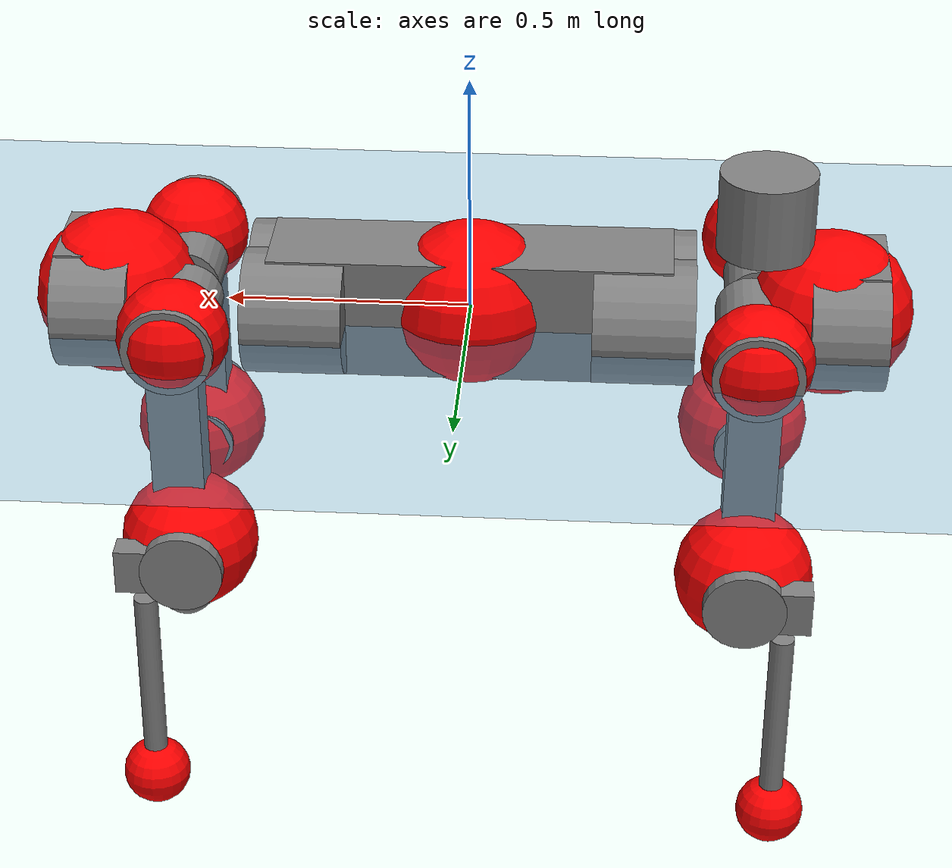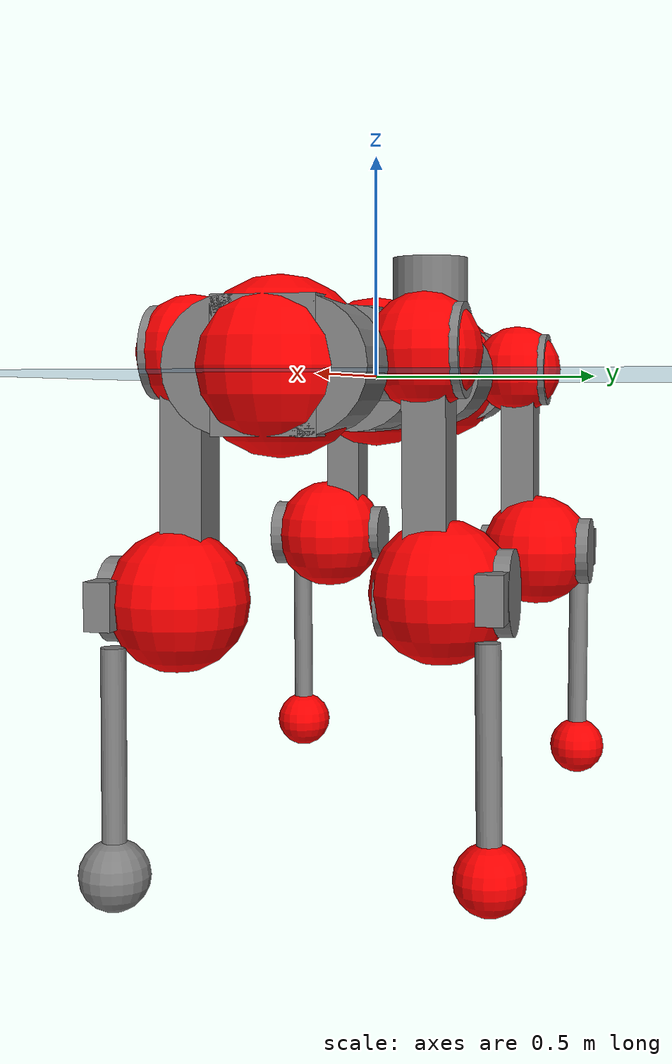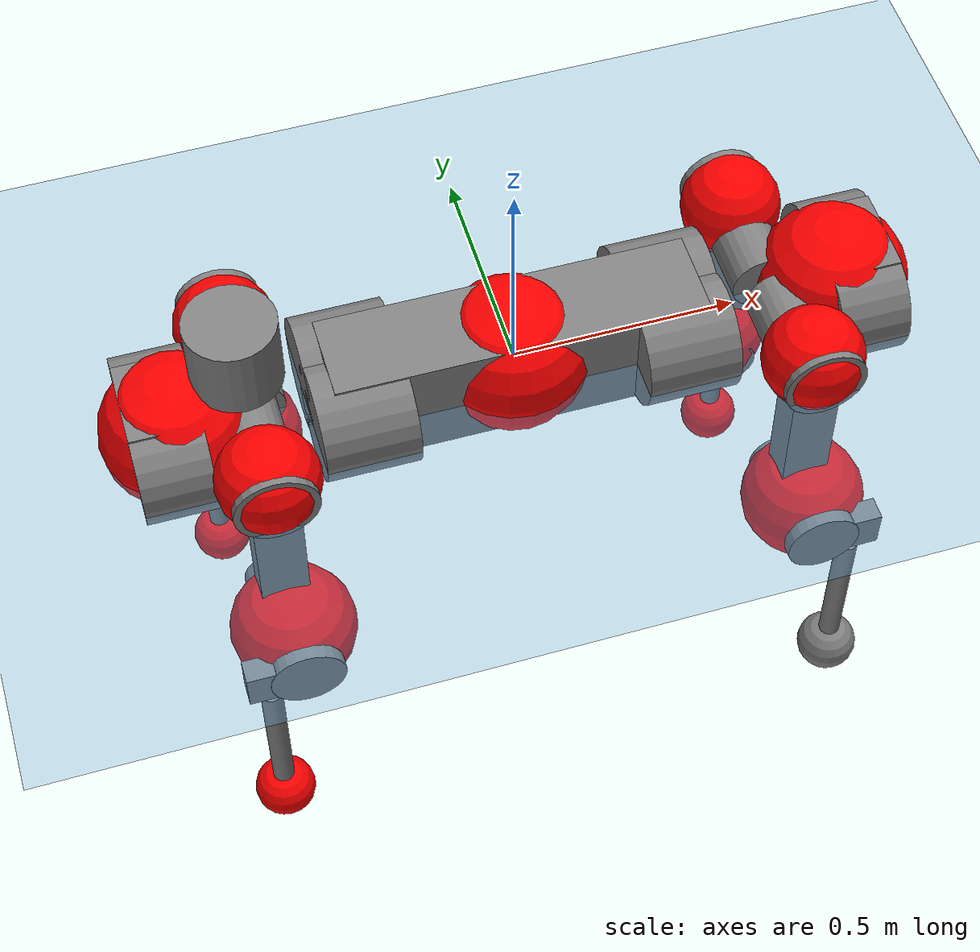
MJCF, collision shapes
<mujoco model="anymal_c">
  <compiler angle="radian" assetdir="assets" balanceinertia="true" inertiafromgeom="false"/>

  <option timestep="0.005" density="1.2" viscosity="2e-05"/>

  <size nkey="1"/>

  <visual>
    <quality shadowsize="8192"/>
    <map shadowclip="0.5"/>
  </visual>

  <default>
    <default class="/">
      <material specular="0" shininess="0.25"/>
      <geom contype="0" conaffinity="0" group="1" solref="-1000 -80"/>
      <site size="0.01 0.005 0.005" group="5"/>
      <general forcelimited="true" forcerange="-80 80" biastype="affine" gainprm="80" biasprm="0 -80 -2"/>
      <default class="anymal_c">
        <joint armature="0.01" damping="0.01" frictionloss="0.1"/>
        <default class="visual">
          <geom type="mesh" group="2"/>
          <default class="visual_zflip"/>
        </default>
        <default class="collision">
          <geom type="cylinder" group="3"/>
          <default class="foot">
            <geom size="0.03 0 0" type="sphere" condim="6" priority="1" friction="0.8 0.02 0.01" solimp="0.015 1 0.03"/>
          </default>
        </default>
      </default>
      <default class="reward_collision_sphere">
        <geom group="5" rgba="1 0 0 1"/>
      </default>
    </default>
  </default>

  <asset>
    <texture type="skybox" colorspace="auto" name="//unnamed_texture_0" builtin="gradient" rgb1="0.95 0.95 0.95" rgb2="0.95 0.95 0.95" width="100" height="600"/>
    <texture type="2d" colorspace="auto" name="texplane" builtin="checker" rgb1="0.345 0.575 0.748" rgb2="0.345 0.575 0.748" markrgb="1 1 1" width="512" height="512"/>
    <texture type="2d" colorspace="linear" name="base" file="base.png"/>
    <texture type="2d" colorspace="linear" name="top_shell" file="top_shell.png"/>
    <texture type="2d" colorspace="linear" name="bottom_shell" file="bottom_shell.png"/>
    <texture type="2d" colorspace="linear" name="remote" file="remote.png"/>
    <texture type="2d" colorspace="linear" name="hatch" file="hatch.png"/>
    <texture type="2d" colorspace="linear" name="handle" file="handle.png"/>
    <texture type="2d" colorspace="linear" name="face" file="face.png"/>
    <texture type="2d" colorspace="linear" name="battery" file="battery.png"/>
    <texture type="2d" colorspace="linear" name="lidar_cage" file="lidar_cage.png"/>
    <texture type="2d" colorspace="linear" name="depth_camera" file="depth_camera.png"/>
    <texture type="2d" colorspace="linear" name="wide_angle_camera" file="wide_angle_camera.png"/>
    <texture type="2d" colorspace="linear" name="lidar" file="lidar.png"/>
    <texture type="2d" colorspace="linear" name="drive" file="drive.png"/>
    <texture type="2d" colorspace="linear" name="hip_l" file="hip_l.png"/>
    <texture type="2d" colorspace="linear" name="shank_l" file="shank_l.png"/>
    <texture type="2d" colorspace="linear" name="foot" file="foot.png"/>
    <texture type="2d" colorspace="linear" name="thigh" file="thigh.png"/>
    <texture type="2d" colorspace="linear" name="shank_r" file="shank_r.png"/>
    <texture type="2d" colorspace="linear" name="hip_r" file="hip_r.png"/>
    <material name="MatPlane" class="/" texture="texplane" texuniform="true" texrepeat="2 2" specular="0.9" shininess="0.5"/>
    <material name="black_plastic" class="/" rgba="0.007 0.007 0.007 1"/>
    <material name="green" class="/" rgba="0.052 0.178 0.033 1"/>
    <material name="red" class="/" rgba="0.178 0.006 0.005 1"/>
    <material name="yellow" class="/" rgba="0.178 0.119 0.006 1"/>
    <material name="lwl" class="/" rgba="0.8 0.8 0.8 1"/>
    <material name="base" class="/" texture="base"/>
    <material name="top_shell" class="/" texture="top_shell"/>
    <material name="bottom_shell" class="/" texture="bottom_shell"/>
    <material name="hip_l" class="/" texture="hip_l"/>
    <material name="thigh" class="/" texture="thigh"/>
    <material name="shank_l" class="/" texture="shank_l"/>
    <material name="foot" class="/" texture="foot"/>
    <material name="hip_r" class="/" texture="hip_r"/>
    <material name="shank" class="/" texture="shank_r"/>
    <material name="hatch" class="/" texture="hatch"/>
    <material name="remote" class="/" texture="remote"/>
    <material name="handle" class="/" texture="handle"/>
    <material name="face" class="/" texture="face"/>
    <material name="depth_camera" class="/" texture="depth_camera"/>
    <material name="wide_angle_camera" class="/" texture="wide_angle_camera"/>
    <material name="battery" class="/" texture="battery"/>
    <material name="lidar_cage" class="/" texture="lidar_cage"/>
    <material name="lidar" class="/" texture="lidar"/>
    <material name="drive" class="/" texture="drive"/>
    <mesh name="base_0" class="/" file="base_0.obj"/>
    <mesh name="base_1" class="/" file="base_1.obj"/>
    <mesh name="base_2" class="/" file="base_2.obj"/>
    <mesh name="base_3" class="/" file="base_3.obj"/>
    <mesh name="base_4" class="/" file="base_4.obj"/>
    <mesh name="base_5" class="/" file="base_5.obj"/>
    <mesh name="top_shell" class="/" file="top_shell.obj"/>
    <mesh name="bottom_shell" class="/" file="bottom_shell.obj"/>
    <mesh name="remote" class="/" file="remote.obj"/>
    <mesh name="handle" class="/" file="handle.obj"/>
    <mesh name="face" class="/" file="face.obj"/>
    <mesh name="wide_angle_camera" class="/" file="wide_angle_camera.obj"/>
    <mesh name="depth_camera" class="/" file="depth_camera.obj"/>
    <mesh name="battery" class="/" file="battery.obj"/>
    <mesh name="lidar_cage" class="/" file="lidar_cage.obj"/>
    <mesh name="lidar" class="/" file="lidar.obj"/>
    <mesh name="drive" class="/" file="drive.obj"/>
    <mesh name="hip_l" class="/" file="hip_l.obj"/>
    <mesh name="thigh" class="/" file="thigh.obj"/>
    <mesh name="shank_l" class="/" file="shank_l.obj"/>
    <mesh name="foot" class="/" file="foot.obj"/>
    <mesh name="hip_r" class="/" file="hip_r.obj"/>
    <mesh name="hatch" class="/" file="hatch.obj"/>
    <mesh name="shank_r" class="/" file="shank_r.obj"/>
  </asset>

  <worldbody>
    <geom name="floor" class="/" size="100 100 0.125" type="plane" group="0" material="MatPlane"/>
    <light name="toplight_shadow" class="/" pos="0 0 5" dir="0.0990148 0.0990148 -0.990148" type="directional" ambient="0.04 0.04 0.04" diffuse="0.55 0.55 0.55" specular="0.12 0.12 0.12"/>
    <light name="toplight_fill" class="/" pos="0 0 5" dir="0.0990148 0.0990148 -0.990148" type="directional" castshadow="false" ambient="0.04 0.04 0.04" diffuse="0.3 0.3 0.3" specular="0.08 0.08 0.08"/>
    <body name="trunk" childclass="anymal_c" pos="-0.00345919 8.86079e-05 0.0119444" quat="0.999998 -0.000388888 0.00118239 -0.00149264">
      <inertial pos="0.0171326 0.0147082 0.075774" quat="0.506628 0.475471 0.526333 0.490132" mass="53.6933" diaginertia="5.29596 0.364907 2.48957"/>
      <joint name="//unnamed_joint_0" type="free" armature="0" damping="0" frictionloss="0"/>
      <geom name="//unnamed_geom_1" class="visual" material="green" mesh="base_0"/>
      <geom name="//unnamed_geom_2" class="visual" material="yellow" mesh="base_1"/>
      <geom name="//unnamed_geom_3" class="visual" material="red" mesh="base_2"/>
      <geom name="//unnamed_geom_4" class="visual" material="black_plastic" mesh="base_3"/>
      <geom name="//unnamed_geom_5" class="visual" material="lwl" mesh="base_4"/>
      <geom name="//unnamed_geom_6" class="visual" material="base" mesh="base_5"/>
      <geom name="trunk_1" class="collision" size="0.410765 0.0991503 0.127479" type="box"/>
      <geom name="trunk_2" class="collision" size="0.127479 0.102691" pos="0.354348 0.0656679 0" quat="0.707107 0 0.707107 0"/>
      <geom name="trunk_3" class="collision" size="0.127479 0.102691" pos="-0.354348 0.0656679 0" quat="0.707107 0 0.707107 0"/>
      <geom name="trunk_4" class="collision" size="0.127479 0.102691" pos="0.354348 -0.0656679 0" quat="0.707107 0 0.707107 0"/>
      <geom name="trunk_5" class="collision" size="0.127479 0.102691" pos="-0.354348 -0.0656679 0" quat="0.707107 0 0.707107 0"/>
      <geom name="//unnamed_geom_12" class="visual" material="top_shell" mesh="top_shell"/>
      <geom name="//unnamed_geom_13" class="visual" material="bottom_shell" mesh="bottom_shell"/>
      <geom name="//unnamed_geom_14" class="visual" material="remote" mesh="remote"/>
      <geom name="//unnamed_geom_15" class="visual" material="handle" mesh="handle"/>
      <geom name="//unnamed_geom_16" class="visual" pos="0.675297 0 0" quat="1 0 0 0" material="face" mesh="face"/>
      <geom name="trunk_6" class="collision" size="0.0779038 0.0991503 0.127479" pos="0.764902 0 0" type="box"/>
      <geom name="//unnamed_geom_18" class="collision" size="0.127479 0.0779038" pos="0.764902 0.0656679 0" quat="0.707107 0 0.707107 0"/>
      <geom name="//unnamed_geom_19" class="collision" size="0.127479 0.0779038" pos="0.764902 -0.0656679 0" quat="0.707107 0 0.707107 0"/>
      <geom name="//unnamed_geom_20" class="visual" pos="0.752115 0 -0.0495159" quat="0.965926 0 0.258819 0" material="depth_camera" mesh="depth_camera"/>
      <geom name="//unnamed_geom_21" class="visual" pos="0.835771 0 0.0251796" material="wide_angle_camera" mesh="wide_angle_camera"/>
      <geom name="//unnamed_geom_22" class="visual_zflip" pos="-0.675297 0 0" quat="0 0 0 1" material="face" mesh="face"/>
      <geom name="trunk_7" class="collision" size="0.0779038 0.0991503 0.127479" pos="-0.764902 0 0" quat="0 0 0 1" type="box"/>
      <geom name="//unnamed_geom_24" class="collision" size="0.127479 0.0779038" pos="-0.764902 -0.0656679 0" quat="0 -0.707107 0 0.707107"/>
      <geom name="//unnamed_geom_25" class="collision" size="0.127479 0.0779038" pos="-0.764902 0.0656679 0" quat="0 -0.707107 0 0.707107"/>
      <geom name="//unnamed_geom_26" class="visual" pos="-0.752115 0 -0.0495159" quat="0 -0.258819 0 0.965926" material="depth_camera" mesh="depth_camera"/>
      <geom name="//unnamed_geom_27" class="visual_zflip" pos="-0.835771 0 0.0251796" quat="0 0 0 1" material="wide_angle_camera" mesh="wide_angle_camera"/>
      <geom name="//unnamed_geom_28" class="visual" material="battery" mesh="battery"/>
      <geom name="//unnamed_geom_29" class="visual" pos="0 0.062662 0.0484607" quat="0.683013 -0.183013 0.183013 0.683013" material="depth_camera" mesh="depth_camera"/>
      <geom name="//unnamed_geom_30" class="visual" pos="0 -0.062662 0.0484607" quat="0.683013 0.183013 0.183013 -0.683013" material="depth_camera" mesh="depth_camera"/>
      <geom name="//unnamed_geom_31" class="visual" pos="-0.593023 0 0.123627" quat="1 0 0 0" material="lidar_cage" mesh="lidar_cage"/>
      <geom name="trunk_8" class="collision" size="0.0991503 0.084986" pos="-0.593023 0 0.224547"/>
      <geom name="//unnamed_geom_33" class="visual" pos="-0.593023 -0.000271503 0.239181" quat="0.707107 0 0 -0.707107" material="lidar" mesh="lidar"/>
      <geom name="//unnamed_geom_34" class="visual" pos="0.488592 0.097828 -1.28322e-08" quat="0.258819 0.965926 0 0" material="drive" mesh="drive"/>
      <geom name="//unnamed_geom_35" class="visual" pos="0.488592 -0.097828 1.28322e-08" quat="0.258819 -0.965926 0 0" material="drive" mesh="drive"/>
      <geom name="//unnamed_geom_36" class="visual" pos="-0.488592 0.097828 1.28322e-08" quat="0 0 0.965926 -0.258819" material="drive" mesh="drive"/>
      <geom name="//unnamed_geom_37" class="visual" pos="-0.488592 -0.097828 -1.28322e-08" quat="0 0 -0.965926 -0.258819" material="drive" mesh="drive"/>
      <geom name="//unnamed_geom_38" class="visual" pos="0.188985 0 0.122786" quat="1 0 0 0" material="hatch" mesh="hatch"/>
      <geom name="//unnamed_geom_39" class="reward_collision_sphere" size="0.169972"/>
      <geom name="//unnamed_geom_40" class="reward_collision_sphere" size="0.169972" pos="0.733133 0 0"/>
      <geom name="//unnamed_geom_41" class="reward_collision_sphere" size="0.169972" pos="-0.733133 0 0"/>
      <site name="imu" pos="0.489364 0.0298146 0.00475898" size="0.0141643"/>
      <camera name="track" pos="0 -1.87623 0" quat="0.707107 0.707107 0 0" mode="trackcom"/>
      <camera name="ego_camera" pos="0.733133 0 -0.0672801" quat="-0.5 -0.5 0.5 0.5"/>
      <body name="LF_HIP" pos="0.484241 0.10549 0.00181923" quat="0.255585 0.966781 0.00322919 0.0006031">
        <inertial pos="0.0774575 -0.00483442 -0.0110733" quat="-0.16308 0.730113 -0.147747 0.646925" mass="9.67209" diaginertia="0.0826257 0.00373687 0.0414271"/>
        <joint name="LF_HAA" pos="0 0 0" axis="0.997985 -0.0488435 -0.0405074" stiffness="0.0340244" range="-0.659341 0.285499" armature="0.00285306" damping="0.0826752" frictionloss="0.177976"/>
        <geom name="//unnamed_geom_42" class="visual" pos="0 -0.000754858 0.000123985" quat="0.258819 -0.965926 0 0" material="hip_l" mesh="hip_l"/>
        <geom name="//unnamed_geom_43" class="visual" pos="0.0975881 -0.109414 -0.0686725" quat="0.183013 -0.683013 0.683013 0.183013" material="drive" mesh="drive"/>
        <geom name="//unnamed_geom_44" class="collision" size="0.0708216 0.0991503" pos="0.0975881 -0.0112196 -0.0116142" quat="-0.353553 -0.612372 0.612372 -0.353553"/>
        <body name="LF_THIGH" pos="0.0968785 -0.0648871 -0.0706195" quat="0.183457 -0.683762 0.681942 0.18376">
          <inertial pos="0.0416995 -0.000568968 -0.428406" quat="0.994064 0.00223894 -0.050766 0.0961971" mass="7.26024" diaginertia="0.397884 0.0209959 0.0576746"/>
          <joint name="LF_HFE" pos="0 0 0" axis="0.996597 0.0792485 0.0226943" range="-3.01568 3.03567" armature="0.0109445" damping="0.0409551" frictionloss="0.245157"/>
          <geom name="//unnamed_geom_45" class="visual" pos="0.0137496 2.16662e-05 0" quat="0.707107 0 0 -0.707107" material="thigh" mesh="thigh"/>
          <geom name="//unnamed_geom_46" class="collision" size="0.0920681 0.0566573" pos="0.0651674 0 0" quat="0.5 0.5 -0.5 -0.5"/>
          <geom name="//unnamed_geom_47" class="collision" size="0.0531162 0.042493 0.200162" pos="0.0488755 0 -0.23769" quat="0.707107 0 0 -0.707107" type="box"/>
          <geom name="//unnamed_geom_48" class="visual" pos="0.163407 0 -0.47937" quat="1 0 0 0" material="drive" mesh="drive"/>
          <geom name="//unnamed_geom_49" class="collision" size="0.0708216 0.0991503" pos="0.0493643 0 -0.47937" quat="0.707107 0 0.707107 0"/>
          <geom name="//unnamed_geom_50" class="reward_collision_sphere" size="0.113315" pos="0.0407296 0 0"/>
          <body name="LF_SHANK" pos="0.149923 0.0138783 -0.46258" quat="0.999977 -0.00386998 -0.00199763 0.00513495">
            <inertial pos="0.0149074 -0.0580676 -0.129479" quat="0.989644 -0.135938 0.0150585 -0.043583" mass="1.93858" diaginertia="0.132449 0.00667706 0.0181775"/>
            <joint name="LF_KFE" pos="0 0 0" axis="0.999182 0.0048078 0.0401411" stiffness="0.009399" range="-2.90969 2.97698" armature="0.0077532" damping="0.0745868" frictionloss="0.0627549"/>
            <geom name="//unnamed_geom_51" class="visual" pos="0.00448344 0.023906 0" quat="0.707107 0 0 -0.707107" material="shank_l" mesh="shank_l"/>
            <geom name="LF_kfe_act" class="collision" size="0.084986 0.0283287" pos="0.0325837 0 0" quat="0.5 0.5 -0.5 -0.5"/>
            <geom name="//unnamed_geom_53" class="collision" size="0.0814435 0.0478046 0.0269122" pos="0.0325837 -0.0539405 0" quat="0.5 0.5 -0.5 -0.5" type="box"/>
            <geom name="//unnamed_geom_54" class="visual" pos="0.0212598 -0.0748031 -0.568466" quat="0.382683 0 0 -0.92388" material="foot" mesh="foot"/>
            <geom name="LF_calf" class="collision" size="0.0247876 0.200074" pos="0.0212609 -0.082507 -0.284233" quat="0.707107 0 0 -0.707107"/>
            <geom name="LF_foot" class="foot" size="0.0509334" pos="0.0212609 -0.082507 -0.530621" quat="0.707107 0 0 -0.707107"/>
            <geom name="//unnamed_geom_57" class="reward_collision_sphere" size="0.141643" pos="-0.0814592 0 0"/>
            <geom name="//unnamed_geom_58" class="reward_collision_sphere" size="0.0708216" pos="0.0212609 -0.082507 -0.530621"/>
            <site name="LF_foot" class="foot" pos="0.0212609 -0.082507 -0.530621" quat="0.707107 0 0 -0.707107" size="0.0141643"/>
          </body>
        </body>
      </body>
      <body name="RF_HIP" pos="0.499922 -0.101435 0.00339601" quat="0.258384 -0.966042 -0.000546873 -9.11891e-05">
        <inertial pos="0.0780027 0.0181513 -0.0171562" quat="0.128936 0.67855 0.130894 0.711205" mass="7.34221" diaginertia="0.0643844 0.00268289 0.0383342"/>
        <joint name="RF_HAA" pos="0 0 0" axis="0.99923 0.0183725 0.0346582" stiffness="0.0364994" range="-0.188754 0.624969" armature="0.0238095" damping="0.0143228" frictionloss="0.246085"/>
        <geom name="//unnamed_geom_59" class="visual" pos="0 0.000754852 0.000123984" quat="0.258819 0.965926 0 0" material="hip_r" mesh="hip_r"/>
        <geom name="//unnamed_geom_60" class="visual" pos="0.0975881 0.109414 -0.0686725" quat="0.183013 0.683013 0.683013 -0.183013" material="drive" mesh="drive"/>
        <geom name="//unnamed_geom_61" class="collision" size="0.0708216 0.0991503" pos="0.0975881 0.0112196 -0.0116142" quat="-0.353553 0.612372 0.612372 0.353553"/>
        <body name="RF_THIGH" pos="0.106422 0.0525781 -0.0609055" quat="0.182088 0.683429 0.682232 -0.18528">
          <inertial pos="0.049621 -0.00454484 -0.409887" quat="0.993109 -0.0712404 -0.0605217 0.0706908" mass="12.1207" diaginertia="0.385237 0.0216915 0.0579167"/>
          <joint name="RF_HFE" pos="0 0 0" axis="0.997869 0.0564574 0.0327171" stiffness="0.0158124" range="-3.47217 2.90942" armature="0.0130612" damping="0.0782115" frictionloss="0.0154159"/>
          <geom name="//unnamed_geom_62" class="visual" pos="0.0137496 2.16662e-05 0" quat="0.707107 0 0 -0.707107" material="thigh" mesh="thigh"/>
          <geom name="//unnamed_geom_63" class="collision" size="0.0920681 0.0566573" pos="0.0651674 0 0" quat="0.5 0.5 0.5 0.5"/>
          <geom name="//unnamed_geom_64" class="collision" size="0.0531162 0.042493 0.200162" pos="0.0488755 0 -0.23769" quat="0.707107 0 0 0.707107" type="box"/>
          <geom name="//unnamed_geom_65" class="visual" pos="0.163407 0 -0.47937" quat="1 0 0 0" material="drive" mesh="drive"/>
          <geom name="//unnamed_geom_66" class="collision" size="0.0708216 0.0991503" pos="0.0493643 0 -0.47937" quat="0.707107 0 0.707107 0"/>
          <geom name="//unnamed_geom_67" class="reward_collision_sphere" size="0.113315" pos="0.0407296 0 0"/>
          <body name="RF_SHANK" pos="0.148801 0.0155944 -0.487713" quat="0.999999 -0.000609649 0.00100738 -0.00106373">
            <inertial pos="0.00966324 0.0601599 -0.151137" quat="0.988907 0.147498 -0.00748135 -0.0158171" mass="1.76564" diaginertia="0.14045 0.00781929 0.0145281"/>
            <joint name="RF_KFE" pos="0 0 0" axis="0.999893 -0.0142106 0.00353073" range="-2.92702 2.91617" armature="0.019292" damping="0" frictionloss="0.256208"/>
            <geom name="//unnamed_geom_68" class="visual" pos="0.00448342 -0.0239059 0" quat="0.707107 0 0 0.707107" material="shank" mesh="shank_r"/>
            <geom name="RF_kfe_act" class="collision" size="0.084986 0.0283287" pos="0.0325837 0 0" quat="0.5 0.5 0.5 0.5"/>
            <geom name="//unnamed_geom_70" class="collision" size="0.0814435 0.0478046 0.0269122" pos="0.0325837 0.0539405 0" quat="0.5 0.5 0.5 0.5" type="box"/>
            <geom name="//unnamed_geom_71" class="visual" pos="0.0212619 0.0748031 -0.568466" quat="0.382683 0 0 0.92388" material="foot" mesh="foot"/>
            <geom name="RF_calf" class="collision" size="0.0247876 0.200074" pos="0.0212609 0.082507 -0.284233" quat="0.707107 0 0 0.707107"/>
            <geom name="RF_foot" class="foot" size="0.0710798" pos="0.0212609 0.082507 -0.530621" quat="0.707107 0 0 0.707107"/>
            <geom name="//unnamed_geom_74" class="reward_collision_sphere" size="0.141643" pos="-0.0814592 0 0"/>
            <geom name="//unnamed_geom_75" class="reward_collision_sphere" size="0.0708216" pos="0.0212609 0.082507 -0.530621"/>
            <site name="RF_foot" class="foot" pos="0.0212609 0.082507 -0.530621" quat="0.707107 0 0 0.707107" size="0.0141643"/>
          </body>
        </body>
      </body>
      <body name="LH_HIP" pos="-0.472065 0.0888449 -0.000532777" quat="0.00272274 0.00153162 0.966245 -0.257604">
        <inertial pos="0.0834799 -0.000778421 -0.0166382" quat="0.139409 0.680508 0.0741119 0.715529" mass="7.82322" diaginertia="0.086593 0.00334682 0.0616155"/>
        <joint name="LH_HAA" pos="0 0 0" axis="0.999259 -0.0366708 0.0117133" stiffness="0.0379513" range="-0.649472 1.07634" armature="0.0254724" damping="0.0663061" frictionloss="0.158528"/>
        <geom name="//unnamed_geom_76" class="visual" pos="0 0.000754852 0.000123984" quat="-0.258819 -0.965926 0 0" material="hip_r" mesh="hip_r"/>
        <geom name="//unnamed_geom_77" class="visual" pos="0.0975881 0.109414 -0.0686725" quat="0.183013 0.683013 0.683013 -0.183013" material="drive" mesh="drive"/>
        <geom name="//unnamed_geom_78" class="collision" size="0.0708216 0.0991503" pos="0.0975881 0.0112196 -0.0116142" quat="-0.353553 0.612372 0.612372 0.353553"/>
        <body name="LH_THIGH" pos="0.10885 0.0855944 -0.0642515" quat="0.183011 0.683009 0.683018 -0.183007">
          <inertial pos="0.0511355 -0.013465 -0.40855" quat="0.994022 -0.00885666 -0.0649225 0.087336" mass="8.80641" diaginertia="0.347844 0.0248214 0.0517748"/>
          <joint name="LH_HFE" pos="0 0 0" axis="0.997597 -0.0683615 0.011299" range="-3.16698 3.21442" armature="0.0209491" damping="0.0545218" frictionloss="0.0872457"/>
          <geom name="//unnamed_geom_79" class="visual" pos="0.0137496 2.16662e-05 0" quat="0.707107 0 0 -0.707107" material="thigh" mesh="thigh"/>
          <geom name="//unnamed_geom_80" class="collision" size="0.0920681 0.0566573" pos="0.0651674 0 0" quat="0.5 0.5 -0.5 -0.5"/>
          <geom name="//unnamed_geom_81" class="collision" size="0.0531162 0.042493 0.200162" pos="0.0488755 0 -0.23769" quat="0.707107 0 0 -0.707107" type="box"/>
          <geom name="//unnamed_geom_82" class="visual" pos="0.163407 0 -0.47937" quat="1 0 0 0" material="drive" mesh="drive"/>
          <geom name="//unnamed_geom_83" class="collision" size="0.0708216 0.0991503" pos="0.0493643 0 -0.47937" quat="0.707107 0 0.707107 0"/>
          <geom name="//unnamed_geom_84" class="reward_collision_sphere" size="0.113315" pos="0.0407296 0 0"/>
          <body name="LH_SHANK" pos="0.174801 -0.00234687 -0.471339" quat="0.999991 0.00112137 0.00382512 0.00115418">
            <inertial pos="0.00982233 0.0577483 -0.133752" quat="0.993381 0.090792 0.0644287 -0.0282657" mass="1.66023" diaginertia="0.111184 0.00630449 0.0180655"/>
            <joint name="LH_KFE" pos="0 0 0" axis="0.998005 -0.00924069 0.0624613" range="-3.14322 3.15043" armature="0.02264" damping="0.0269943" frictionloss="0.0607477"/>
            <geom name="//unnamed_geom_85" class="visual" pos="0.00448342 -0.0239059 0" quat="-0.707107 0 0 -0.707107" material="shank" mesh="shank_r"/>
            <geom name="LH_kfe_act" class="collision" size="0.084986 0.0283287" pos="0.0325837 0 0" quat="0.5 0.5 -0.5 -0.5"/>
            <geom name="//unnamed_geom_87" class="collision" size="0.0814435 0.0478046 0.0269122" pos="0.0325837 0.0539405 0" quat="0.5 0.5 -0.5 -0.5" type="box"/>
            <geom name="//unnamed_geom_88" class="visual" pos="0.0212619 0.0748031 -0.568466" quat="-0.382683 0 0 -0.92388" material="foot" mesh="foot"/>
            <geom name="LH_calf" class="collision" size="0.0247876 0.200074" pos="0.0212609 0.082507 -0.284233" quat="0.707107 0 0 -0.707107"/>
            <geom name="LH_foot" class="foot" size="0.0150548" pos="0.0212609 0.082507 -0.530621" quat="0.707107 0 0 -0.707107"/>
            <geom name="//unnamed_geom_91" class="reward_collision_sphere" size="0.141643" pos="-0.0814592 0 0"/>
            <geom name="//unnamed_geom_92" class="reward_collision_sphere" size="0.0708216" pos="0.0212609 0.082507 -0.530621"/>
            <site name="LH_foot" class="foot" pos="0.0212609 0.082507 -0.530621" quat="0.707107 0 0 -0.707107" size="0.0141643"/>
          </body>
        </body>
      </body>
      <body name="RH_HIP" pos="-0.491226 -0.0823676 0.00894962" quat="0.00631051 0.000706577 -0.966256 -0.257507">
        <inertial pos="0.107708 -0.0127721 -0.0282199" quat="-0.143127 0.688892 -0.129364 0.698719" mass="8.81725" diaginertia="0.0744574 0.00401347 0.059667"/>
        <joint name="RH_HAA" pos="0 0 0" axis="0.99997 -0.00719694 0.00296003" stiffness="0.0472999" range="-0.442037 0.159158" armature="0.0153666" damping="0.0633095" frictionloss="0.137677"/>
        <geom name="//unnamed_geom_93" class="visual" pos="0 -0.000754858 0.000123985" quat="-0.258819 0.965926 0 0" material="hip_l" mesh="hip_l"/>
        <geom name="//unnamed_geom_94" class="visual" pos="0.0975881 -0.109414 -0.0686725" quat="-0.183013 0.683013 -0.683013 -0.183013" material="drive" mesh="drive"/>
        <geom name="//unnamed_geom_95" class="collision" size="0.0708216 0.0991503" pos="0.0975881 -0.0112196 -0.0116142" quat="0.353553 0.612372 -0.612372 0.353553"/>
        <body name="RH_THIGH" pos="0.0947552 -0.0587137 -0.0858285" quat="-0.184019 0.682155 -0.683776 -0.182351">
          <inertial pos="0.0380593 0.00580515 -0.418362" quat="0.993228 -0.0042349 -0.0807306 0.0834447" mass="12.7918" diaginertia="0.49721 0.0257035 0.0636718"/>
          <joint name="RH_HFE" pos="0 0 0" axis="0.997691 -0.0572574 0.0365216" stiffness="0.00810102" range="-3.19554 3.14009" armature="0.0201159" damping="0.0492084" frictionloss="0.136301"/>
          <geom name="//unnamed_geom_96" class="visual" pos="0.0137496 2.16662e-05 0" quat="0.707107 0 0 -0.707107" material="thigh" mesh="thigh"/>
          <geom name="//unnamed_geom_97" class="collision" size="0.0920681 0.0566573" pos="0.0651674 0 0" quat="0.5 0.5 0.5 0.5"/>
          <geom name="//unnamed_geom_98" class="collision" size="0.0531162 0.042493 0.200162" pos="0.0488755 0 -0.23769" quat="0.707107 0 0 0.707107" type="box"/>
          <geom name="//unnamed_geom_99" class="visual" pos="0.163407 0 -0.47937" quat="1 0 0 0" material="drive" mesh="drive"/>
          <geom name="//unnamed_geom_100" class="collision" size="0.0708216 0.0991503" pos="0.0493643 0 -0.47937" quat="0.707107 0 0.707107 0"/>
          <geom name="//unnamed_geom_101" class="reward_collision_sphere" size="0.113315" pos="0.0407296 0 0"/>
          <body name="RH_SHANK" pos="0.178411 0.00572925 -0.484291" quat="0.999989 0.00173907 0.00407877 -0.0016103">
            <inertial pos="0.017114 -0.0580257 -0.138497" quat="0.990794 -0.105296 -0.0609732 -0.0593407" mass="1.52433" diaginertia="0.12635 0.00533849 0.0140407"/>
            <joint name="RH_KFE" pos="0 0 0" axis="0.999997 0.000426395 -0.00226339" range="-3.03203 3.28282" armature="0.0256363" damping="0" frictionloss="0.139729"/>
            <geom name="//unnamed_geom_102" class="visual" pos="0.00448344 0.023906 0" quat="0.707107 0 0 -0.707107" material="shank_l" mesh="shank_l"/>
            <geom name="RH_kfe_act" class="collision" size="0.084986 0.0283287" pos="0.0325837 0 0" quat="0.5 0.5 0.5 0.5"/>
            <geom name="//unnamed_geom_104" class="collision" size="0.0814435 0.0478046 0.0269122" pos="0.0325837 -0.0539405 0" quat="0.5 0.5 0.5 0.5" type="box"/>
            <geom name="//unnamed_geom_105" class="visual" pos="0.0212598 -0.0748031 -0.568466" quat="0.382683 0 0 -0.92388" material="foot" mesh="foot"/>
            <geom name="RH_calf" class="collision" size="0.0247876 0.200074" pos="0.0212609 -0.082507 -0.284233" quat="0.707107 0 0 0.707107"/>
            <geom name="RH_foot" class="foot" size="0.0609688" pos="0.0212609 -0.082507 -0.530621" quat="0.707107 0 0 0.707107"/>
            <geom name="//unnamed_geom_108" class="reward_collision_sphere" size="0.141643" pos="-0.0814592 0 0"/>
            <geom name="//unnamed_geom_109" class="reward_collision_sphere" size="0.0708216" pos="0.0212609 -0.082507 -0.530621"/>
            <site name="RH_foot" class="foot" pos="0.0212609 -0.082507 -0.530621" quat="0.707107 0 0 0.707107" size="0.0141643"/>
          </body>
        </body>
      </body>
    </body>
  </worldbody>

  <contact>
    <pair class="/" geom1="floor" geom2="LF_foot" name="//unnamed_contact_0"/>
    <pair class="/" geom1="floor" geom2="RF_foot" name="//unnamed_contact_1"/>
    <pair class="/" geom1="floor" geom2="LH_foot" name="//unnamed_contact_2"/>
    <pair class="/" geom1="floor" geom2="RH_foot" name="//unnamed_contact_3"/>
  </contact>

  <actuator>
    <general name="LF_HAA" class="/" joint="LF_HAA" forcerange="-133.907 133.907" gainprm="86.6126" biasprm="0 -86.6126 -3.4095"/>
    <general name="LF_HFE" class="/" joint="LF_HFE" forcerange="-157.576 157.576" gainprm="86.6126" biasprm="0 -86.6126 -3.4095"/>
    <general name="LF_KFE" class="/" joint="LF_KFE" forcerange="-139.995 139.995" gainprm="86.6126" biasprm="0 -86.6126 -3.4095"/>
    <general name="RF_HAA" class="/" joint="RF_HAA" forcerange="-160.059 160.059" gainprm="86.6126" biasprm="0 -86.6126 -3.4095"/>
    <general name="RF_HFE" class="/" joint="RF_HFE" forcerange="-74.8697 74.8697" gainprm="86.6126" biasprm="0 -86.6126 -3.4095"/>
    <general name="RF_KFE" class="/" joint="RF_KFE" forcerange="-174.55 174.55" gainprm="86.6126" biasprm="0 -86.6126 -3.4095"/>
    <general name="LH_HAA" class="/" joint="LH_HAA" forcerange="-119.296 119.296" gainprm="86.6126" biasprm="0 -86.6126 -3.4095"/>
    <general name="LH_HFE" class="/" joint="LH_HFE" forcerange="-175.456 175.456" gainprm="86.6126" biasprm="0 -86.6126 -3.4095"/>
    <general name="LH_KFE" class="/" joint="LH_KFE" forcerange="-138.598 138.598" gainprm="86.6126" biasprm="0 -86.6126 -3.4095"/>
    <general name="RH_HAA" class="/" joint="RH_HAA" forcerange="-144.625 144.625" gainprm="86.6126" biasprm="0 -86.6126 -3.4095"/>
    <general name="RH_HFE" class="/" joint="RH_HFE" forcerange="-181.482 181.482" gainprm="86.6126" biasprm="0 -86.6126 -3.4095"/>
    <general name="RH_KFE" class="/" joint="RH_KFE" forcerange="-54.7976 54.7976" gainprm="86.6126" biasprm="0 -86.6126 -3.4095"/>
  </actuator>

  <sensor>
    <gyro site="imu" name="imu_angular_velocity"/>
    <velocimeter site="imu" name="imu_linear_velocity"/>
    <framelinvel objtype="site" objname="LF_foot" name="LF_foot_global_linear_velocity"/>
    <framelinvel objtype="site" objname="RF_foot" name="RF_foot_global_linear_velocity"/>
    <framelinvel objtype="site" objname="LH_foot" name="LH_foot_global_linear_velocity"/>
    <framelinvel objtype="site" objname="RH_foot" name="RH_foot_global_linear_velocity"/>
  </sensor>

  <keyframe>
    <key name="home" qpos="0 0 0.55 1 0 0 0 0 0.4 -0.8 0 -0.4 0.8 0 -0.4 0.8 0 0.4 -0.8"/>
  </keyframe>
</mujoco>
